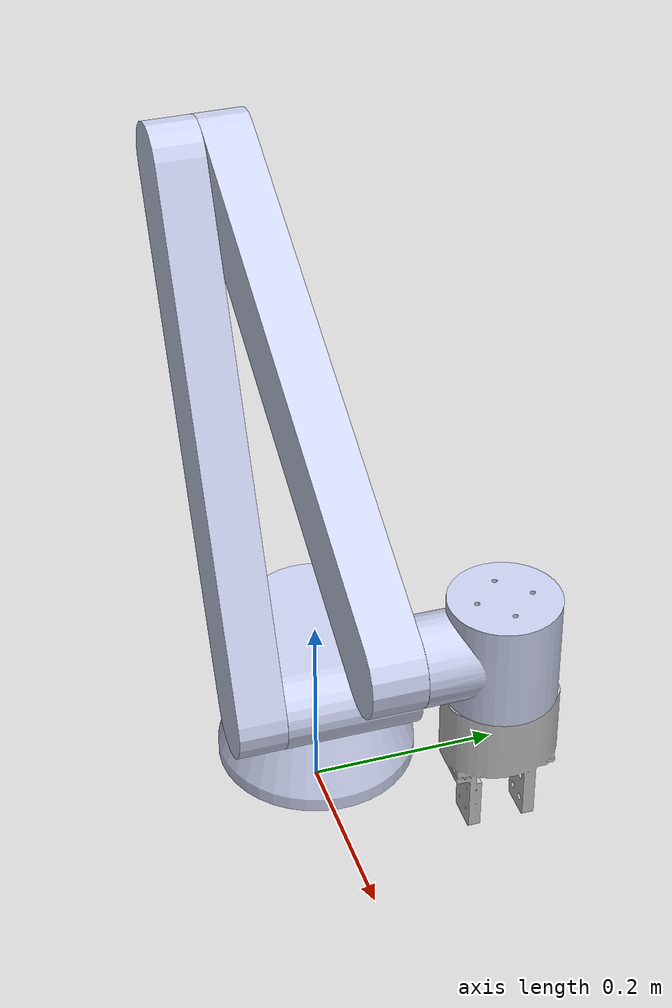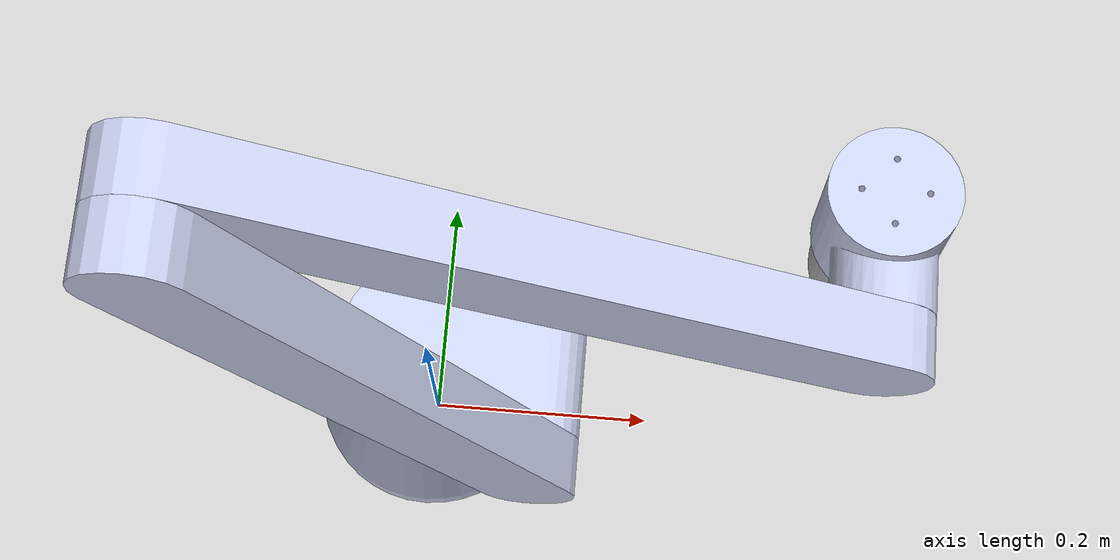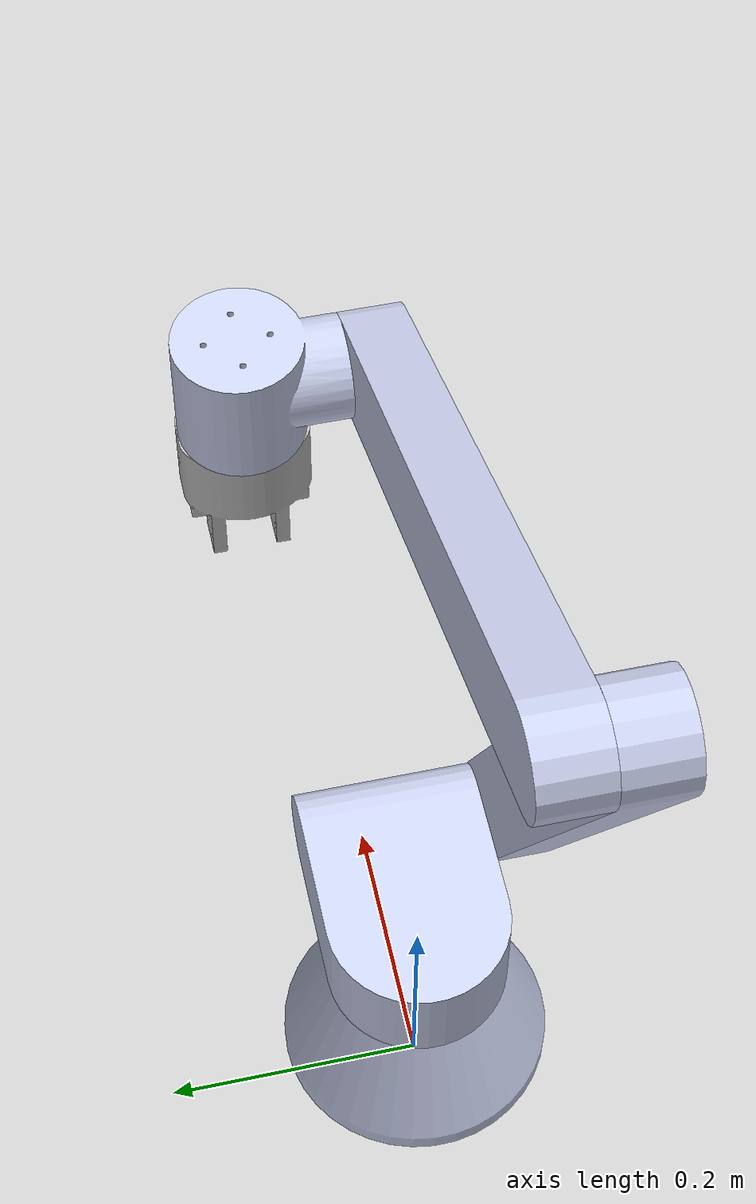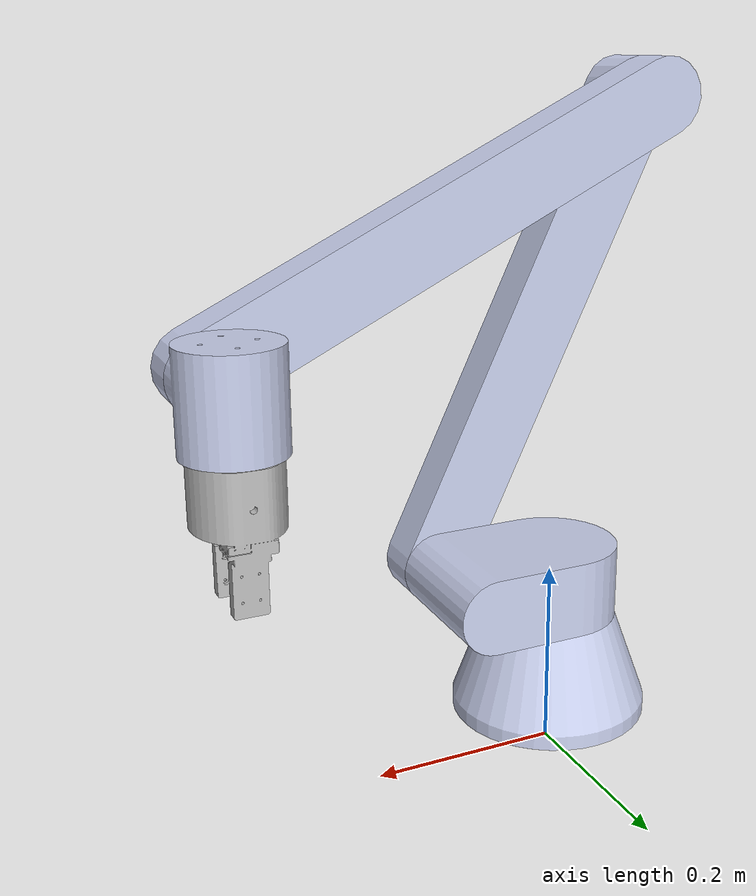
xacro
<?xml version="1.0"?>
<!-- Revolute-Revolute Manipulator -->
<robot name="omron1s" xmlns:xacro="http://www.ros.org/wiki/xacro">

  <!-- Import all Gazebo-customization elements, including Gazebo colors -->
  <xacro:include filename="$(find omron1s_description)/urdf/omron1s.gazebo"/>
  <!-- Import Rviz colors -->
  <xacro:include filename="$(find omron1s_description)/urdf/materials.xacro"/>

  <!-- Used for fixing robot to Gazebo 'base_link' -->
  <link name="world"/>

    <joint
    name="fixed"
    type="fixed">
    <origin
      xyz="-0.097 -0.037 0.0"
      rpy="0 0 1.3326126" />
    <parent
      link="world" />
    <child
      link="base_link" />
  </joint>

  <link
    name="base_link">
    <inertial>
      <origin
        xyz="0.058756 0.1005 0.084662"
        rpy="0 0 0" />
      <mass
        value="0.71125" />
      <inertia
        ixx="0.0032491"
        ixy="9.9309E-22"
        ixz="2.1972E-22"
        iyy="0.0048171"
        iyz="7.6504E-19"
        izz="0.0032491" />
    </inertial>
    <visual>
      <origin
        xyz="0 0 0"
        rpy="0 0 0" />
      <geometry>
        <mesh
          filename="file:///$(find omron1s_description)/meshes/base_link.STL" />
      </geometry>
      <material
        name="">
        <color
          rgba="0.79216 0.81961 0.93333 1" />
      </material>
    </visual>
    <collision>
      <origin
        xyz="0 0 0"
        rpy="0 0 0" />
      <geometry>
        <mesh
          filename="file:///$(find omron1s_description)/meshes/base_link.STL" />
      </geometry>
    </collision>
  </link>
  <link
    name="link1">
    <inertial>
      <origin
        xyz="-2.0817E-17 0.04 -0.037778"
        rpy="0 0 0" />
      <mass
        value="2.0876" />
      <inertia
        ixx="0.0074287"
        ixy="-5.1585E-20"
        ixz="-3.4152E-18"
        iyy="0.0095206"
        iyz="1.3951E-19"
        izz="0.0042248" />
    </inertial>
    <visual>
      <origin
        xyz="0 0 0"
        rpy="0 0 0" />
      <geometry>
        <mesh
          filename="file:///$(find omron1s_description)/meshes/link1.STL" />
      </geometry>
      <material
        name="">
        <color
          rgba="0.79216 0.81961 0.93333 1" />
      </material>
    </visual>
    <collision>
      <origin
        xyz="0 0 0"
        rpy="0 0 0" />
      <geometry>
        <mesh
          filename="file:///$(find omron1s_description)/meshes/link1.STL" />
      </geometry>
    </collision>
  </link>
  <joint
    name="joint1"
    type="revolute">
    <origin
      xyz="0.058756 -0.084662 0.15198"
      rpy="1.5708 0 -2.9046" />
    <parent
      link="base_link" />
    <child
      link="link1" />
    <axis
      xyz="0 1 0" />
    <limit
      lower="-6.28"
      upper="6.28"
      effort="100"
      velocity="6.28" />
    <dynamics
      damping="100"
      friction="20" />
  </joint>
  <link
    name="link2">
    <inertial>
      <origin
        xyz="-0.022244 -3.8858E-16 0.275"
        rpy="0 0 0" />
      <mass
        value="2.4513" />
      <inertia
        ixx="0.078186"
        ixy="3.4694E-18"
        ixz="-3.464E-17"
        iyy="0.077423"
        iyz="9.3079E-17"
        izz="0.0017846" />
    </inertial>
    <visual>
      <origin
        xyz="0 0 0"
        rpy="0 0 0" />
      <geometry>
        <mesh
          filename="file:///$(find omron1s_description)/meshes/link2.STL" />
      </geometry>
      <material
        name="">
        <color
          rgba="0.79216 0.81961 0.93333 1" />
      </material>
    </visual>
    <collision>
      <origin
        xyz="0 0 0"
        rpy="0 0 0" />
      <geometry>
        <mesh
          filename="file:///$(find omron1s_description)/meshes/link2.STL" />
      </geometry>
    </collision>
  </link>
  <joint
    name="joint2"
    type="revolute">
    <origin
      xyz="0.072756 0.04 -0.1"
      rpy="1.1256 0 3.1416" />
    <parent
      link="link1" />
    <child
      link="link2" />
    <axis
      xyz="1 0 0" />
    <limit
      lower="-6.28"
      upper="6.28"
      effort="100"
      velocity="6.28" />
    <dynamics
      damping="100"
      friction="20" />
  </joint>
  <link
    name="link3">
    <inertial>
      <origin
        xyz="0.027756 7.7716E-16 0.275"
        rpy="0 0 0" />
      <mass
        value="2.4513" />
      <inertia
        ixx="0.078186"
        ixy="-4.3368E-19"
        ixz="-2.1874E-17"
        iyy="0.077423"
        iyz="6.0607E-17"
        izz="0.0017846" />
    </inertial>
    <visual>
      <origin
        xyz="0 0 0"
        rpy="0 0 0" />
      <geometry>
        <mesh
          filename="file:///$(find omron1s_description)/meshes/link3.STL" />
      </geometry>
      <material
        name="">
        <color
          rgba="0.79216 0.81961 0.93333 1" />
      </material>
    </visual>
    <collision>
      <origin
        xyz="0 0 0"
        rpy="0 0 0" />
      <geometry>
        <mesh
          filename="file:///$(find omron1s_description)/meshes/link3.STL" />
      </geometry>
    </collision>
  </link>
  <joint
    name="joint3"
    type="revolute">
    <origin
      xyz="0 0 0.55"
      rpy="2.4678 0 0" />
    <parent
      link="link2" />
    <child
      link="link3" />
    <axis
      xyz="1 0 0" />
    <limit
      lower="-6.28"
      upper="6.28"
      effort="100"
      velocity="6.28" />
    <dynamics
      damping="100"
      friction="20" />
  </joint>
  <link
    name="link4">
    <inertial>
      <origin
        xyz="0.01137 -1.4733E-08 2.4175E-08"
        rpy="0 0 0" />
      <mass
        value="0.95052" />
      <inertia
        ixx="0.001281"
        ixy="8.7095E-10"
        ixz="-2.2716E-09"
        iyy="0.0016268"
        iyz="-9.4098E-10"
        izz="0.0017739" />
    </inertial>
    <visual>
      <origin
        xyz="0 0 0"
        rpy="0 0 0" />
      <geometry>
        <mesh
          filename="file:///$(find omron1s_description)/meshes/link4.STL" />
      </geometry>
      <material
        name="">
        <color
          rgba="0.79216 0.81961 0.93333 1" />
      </material>
    </visual>
    <collision>
      <origin
        xyz="0 0 0"
        rpy="0 0 0" />
      <geometry>
        <mesh
          filename="file:///$(find omron1s_description)/meshes/link4.STL" />
      </geometry>
    </collision>
  </link>
  <joint
    name="joint4"
    type="revolute">
    <origin
      xyz="0.13276 0 0.55"
      rpy="0.45181 0 -3.1416" />
    <parent
      link="link3" />
    <child
      link="link4" />
    <axis
      xyz="-1 0 0" />
    <limit
      lower="-6.28"
      upper="6.28"
      effort="100"
      velocity="6.28" />
    <dynamics
      damping="100"
      friction="20" />
  </joint>
  <link
    name="gripper">
    <inertial>
      <origin
        xyz="0.037654 0.05165 0.064091"
        rpy="0 0 0" />
      <mass
        value="0.25674" />
      <inertia
        ixx="0.00015569"
        ixy="1.8365E-07"
        ixz="2.3502E-07"
        iyy="0.00027921"
        iyz="9.4751E-08"
        izz="0.00021782" />
    </inertial>
    <visual>
      <origin
        xyz="0 0 0"
        rpy="0 0 0" />
      <geometry>
        <mesh
          filename="file:///$(find omron1s_description)/meshes/gripper.STL" />
      </geometry>
      <material
        name="">
        <color
          rgba="0.75294 0.75294 0.75294 1" />
      </material>
    </visual>
    <collision>
      <origin
        xyz="0 0 0"
        rpy="0 0 0" />
      <geometry>
        <mesh
          filename="file:///$(find omron1s_description)/meshes/gripper.STL" />
      </geometry>
    </collision>
  </link>
  <joint
    name="gripper_joint"
    type="fixed">
    <origin
      xyz="0.037522 0.15383 -0.064188"
      rpy="0 0 3.1416" />
    <parent
      link="link4" />
    <child
      link="gripper" />
    <axis
      xyz="0 0 0" />
  </joint>

  <link name="tool0"/>

  <joint
    name="tool0_joint"
    type="fixed">
    <origin
      xyz="0.0 0.19 0.0"
      rpy="1.5708 -1.5708 0" />
    <parent
      link="link4" />
    <child
      link="tool0" />
  </joint>

  <!-- ROS2 CONTROL-->
  <ros2_control name="Omron1SControl" type="system">

    <hardware>
      <plugin>gazebo_ros2_control/GazeboSystem</plugin>
    </hardware>

      <joint name="joint1">
        <param name="id">1</param>
        <command_interface name="position">
          <param name="min">-3.14</param>
          <param name="max">3.14</param>
        </command_interface>
        <state_interface name="position"/>
        <state_interface name="velocity"/>
        <state_interface name="effort"/>
      </joint>

      <joint name="joint2">
        <param name="id">2</param>
        <command_interface name="position">
          <param name="min">-3.14</param>
          <param name="max">3.14</param>
        </command_interface>
        <state_interface name="position"/>
        <state_interface name="velocity"/>
        <state_interface name="effort"/>
      </joint>

      <joint name="joint3">
        <param name="id">3</param>
        <command_interface name="position">
          <param name="min">-3.14</param>
          <param name="max">3.14</param>
        </command_interface>
        <state_interface name="position"/>
        <state_interface name="velocity"/>
        <state_interface name="effort"/>
      </joint>

      <joint name="joint4">
        <param name="id">4</param>
        <command_interface name="position">
          <param name="min">-3.14</param>
          <param name="max">3.14</param>
        </command_interface>
        <state_interface name="position"/>
        <state_interface name="velocity"/>
        <state_interface name="effort"/>
      </joint>

    </ros2_control>

  <gazebo>
    <plugin name="gazebo_ros2_control" filename="libgazebo_ros2_control.so">
      <robot_sim_type>gazebo_ros2_control/GazeboSystem</robot_sim_type>
      <parameters>$(find omron1s_hwi)/config/controller_configuration.yaml</parameters>
    </plugin>
  </gazebo>

  <!-- TRANSMISSION -->
  <!-- Transmission 1 -->
  <transmission name="tran1">
    <type>transmission_interface/SimpleTransmission</type>
    <joint name="joint1">
      <hardwareInterface>hardware_interface/PositionJointInterface</hardwareInterface>
    </joint>
    <actuator name="motor1">
      <hardwareInterface>hardware_interface/PositionJointInterface</hardwareInterface>
      <mechanicalReduction>1</mechanicalReduction>
    </actuator>
  </transmission>
  <!-- Transmission 2 -->
  <transmission name="tran2">
    <type>transmission_interface/SimpleTransmission</type>
    <joint name="joint2">
      <hardwareInterface>hardware_interface/PositionJointInterface</hardwareInterface>
    </joint>
    <actuator name="motor2">
      <hardwareInterface>hardware_interface/PositionJointInterface</hardwareInterface>
      <mechanicalReduction>1</mechanicalReduction>
    </actuator>
  </transmission>
  <!-- Transmission 3 -->
  <transmission name="tran3">
    <type>transmission_interface/SimpleTransmission</type>
    <joint name="joint3">
      <hardwareInterface>hardware_interface/PositionJointInterface</hardwareInterface>
    </joint>
    <actuator name="motor3">
      <hardwareInterface>hardware_interface/PositionJointInterface</hardwareInterface>
      <mechanicalReduction>1</mechanicalReduction>
    </actuator>
  </transmission>
  <!-- Transmission 4 -->
  <transmission name="tran4">
    <type>transmission_interface/SimpleTransmission</type>
    <joint name="joint4">
      <hardwareInterface>hardware_interface/PositionJointInterface</hardwareInterface>
    </joint>
    <actuator name="motor4">
      <hardwareInterface>hardware_interface/PositionJointInterface</hardwareInterface>
      <mechanicalReduction>1</mechanicalReduction>
    </actuator>
  </transmission>

</robot>
